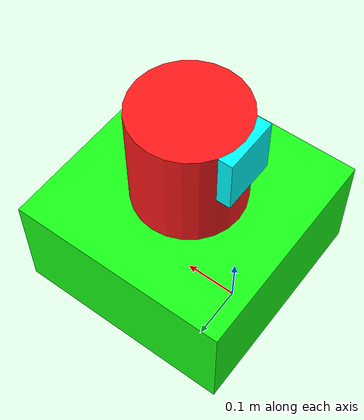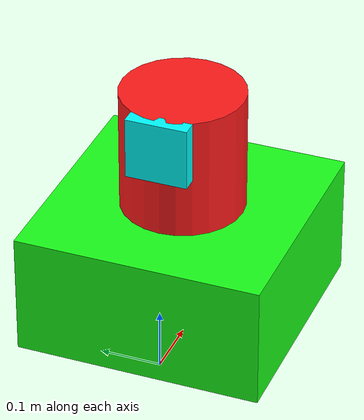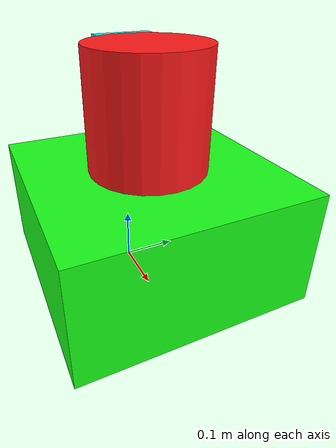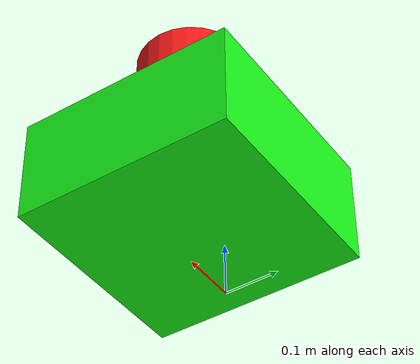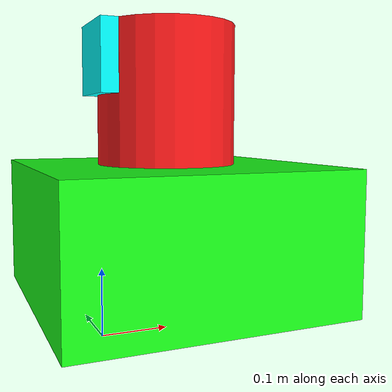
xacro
<?xml version="1.0"?>
<robot xmlns:xacro="http://www.ros.org/wiki/xacro" >

    <xacro:include filename="inertial_macros.xacro"/>

    <!-- WORLD LINK [origin reference of frame] -->

    <link name="base_link">

    </link>

    <!-- BOX [box parts of the robot body] -->

    <joint name="box_joint" type="fixed">
        <parent link="base_link"/>
        <child link="box_link"/>
        <origin xyz="0 0 0.05"/>
    </joint>

    <link name="box_link">
        <visual>
            <origin xyz="0.1 0 0.1"/>
            <geometry>
                <box size="0.4 0.4 0.2"/>
            </geometry>
            <material name="green">
                <color rgba="0.1 1 0.1 1"/>
            </material>
        </visual>

        <collision>
            <origin xyz="0.1 0 0.1"/>
            <geometry>
                <box size="0.4 0.4 0.2"/>
            </geometry>
        </collision>

       <xacro:inertial_box mass="3" x="0.4" y="0.4" z="0.2">
            <origin xyz="0.1 0 0.1" rpy="0 0 0"/>
        </xacro:inertial_box>
    </link>

  <!-- cylinder [cylinder parts of the robot body] -->

    <joint name="cylinder_joint" type="fixed">
        <parent link="base_link"/>
        <child link="cylinder_link"/>
        <origin xyz="0.1 0 0.3" rpy="0 0 0" />
        <axis xyz="0 0 -1"/>
    </joint>

    <link name="cylinder_link">
        <visual>
            <origin xyz="0 0 0"/>
            <geometry>
                <cylinder radius="0.1" length="0.3"/>
            </geometry>
            <material name="red">
                <color rgba="1 0.1 0.1 1"/>
            </material>
        </visual>

        <collision>
            <origin xyz="0 0 0"/>
            <geometry>
                <cylinder radius="0.1" length="0.3"/>
            </geometry>
        </collision>

       <xacro:inertial_cylinder mass="1" radius="0.1" length="0.3">
            <origin xyz="0 0 0" rpy="0 0 0"/>
        </xacro:inertial_cylinder>
    </link>

    <!-- camera [camera of robot] -->

    <joint name="camera_joint" type="fixed">
        <parent link="cylinder_link"/>
        <child link="camera_link"/>
        <origin xyz="0 0 0.1"/>
    </joint>

    <link name="camera_link">
        <visual>
            <origin xyz="-0.1 0 0"/>
            <geometry>
                <box size="0.025 0.1 0.1"/>
            </geometry>
            <material name="cyan">
                <color rgba="0 1 1 1"/>
            </material>
        </visual>

        <collision>
            <origin xyz="-0.1 0 0"/>
            <geometry>
                <box size="0.025 0.1 0.1"/>
            </geometry>
        </collision>

       <xacro:inertial_box mass="0.25" x="0.025" y="0.1" z="0.1">
            <origin xyz="-0.1 0 0" rpy="0 0 0"/>
        </xacro:inertial_box>
    </link>

</robot>

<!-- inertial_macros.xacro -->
<robot xmlns:xacro="http://www.ros.org/wiki/xacro" >

    <!-- Inertial tensor of cuboid and cylinder -->

    <xacro:macro name="inertial_box" params="mass x y z *origin">
        <inertial>
            <xacro:insert_block name="origin"/>
            <mass value="${mass}" />
            <inertia ixx="${(1/12) * mass * (y*y+z*z)}" ixy="0.0" ixz="0.0"
                    iyy="${(1/12) * mass * (x*x+z*z)}" iyz="0.0"
                    izz="${(1/12) * mass * (x*x+y*y)}" />
        </inertial>
    </xacro:macro>

    <xacro:macro name="inertial_cylinder" params="mass radius length *origin">
        <inertial>
            <xacro:insert_block name="origin"/>
            <mass value="${mass}" />
            <inertia ixx="${(1/12) * mass * (3*radius*radius + length*length)}" ixy="0.0" ixz="0.0"
                    iyy="${(1/12) * mass * (3*radius*radius + length*length)}" iyz="0.0"
                    izz="${(1/2) * mass * (radius*radius)}" />
        </inertial>
    </xacro:macro>

</robot>
